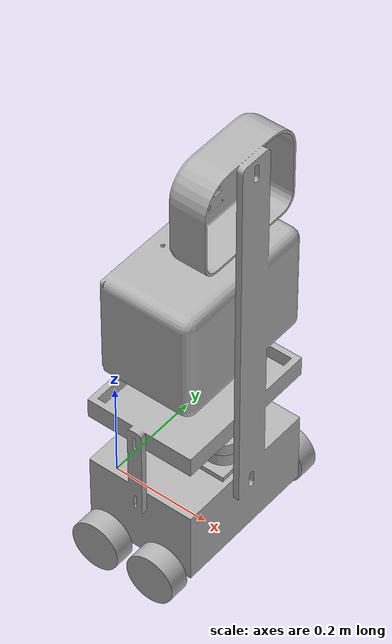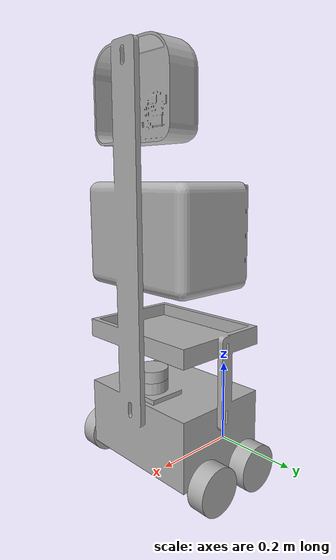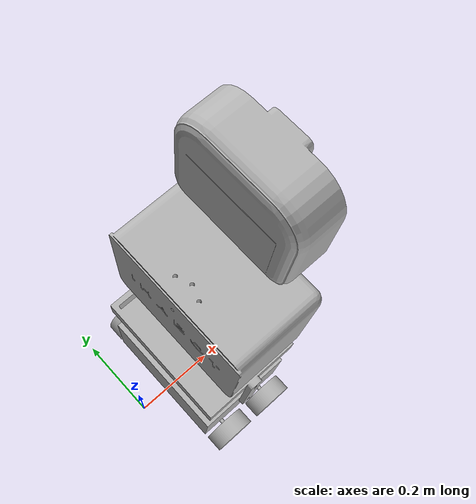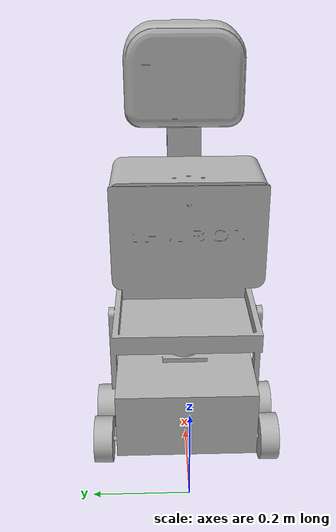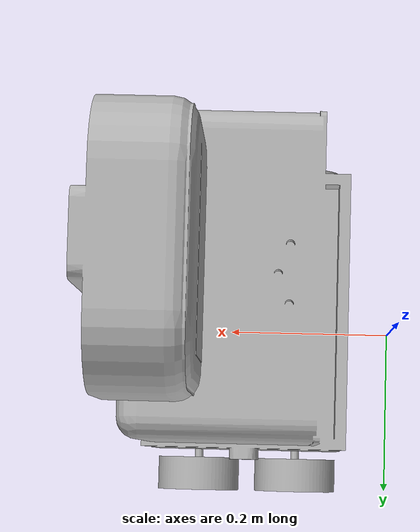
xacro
<?xml version="1.0" ?>
<robot name="base_new" xmlns:xacro="http://www.ros.org/wiki/xacro">

<xacro:include filename="$(find base_new_description)/urdf/materials.xacro" />
<xacro:include filename="$(find base_new_description)/urdf/base_new.trans" />
<xacro:include filename="$(find base_new_description)/gazebo/base_new_materials.gazebo" />
<xacro:include filename="$(find base_new_description)/gazebo/base_new_physics.gazebo" />
<xacro:include filename="$(find base_new_description)/gazebo/base_new_plugins.gazebo" />

<link name="robot_footprint"></link>

<link name="base_link">
  <inertial>
    <origin xyz="0.18818097737700523 0.001413628690118841 0.2554430927892546" rpy="0 0 0"/>
    <mass value="69.73565565400098"/>
    <inertia ixx="3.659637" iyy="3.418327" izz="0.862462" ixy="0.000429" iyz="0.009598" ixz="-0.25314"/>
  </inertial>
  <visual>
    <origin xyz="0 0 0" rpy="0 0 0"/>
    <geometry>
      <mesh filename="package://base_new_description/meshes/base_link.stl" scale="0.001 0.001 0.001"/>
    </geometry>
    <material name="silver"/>
  </visual>
  <collision>
    <origin xyz="0 0 0" rpy="0 0 0"/>
    <geometry>
      <mesh filename="package://base_new_description/meshes/base_link.stl" scale="0.001 0.001 0.001"/>
    </geometry>
  </collision>
</link>

<link name="lidar_1">
  <inertial>
    <origin xyz="-4.966178165366486e-07 1.6718262996814198e-07 0.012500447059971553" rpy="0 0 0"/>
    <mass value="0.10198395151715865"/>
    <inertia ixx="3.7e-05" iyy="3.7e-05" izz="6.2e-05" ixy="0.0" iyz="-0.0" ixz="-0.0"/>
  </inertial>
  <visual>
    <origin xyz="-0.237007 -0.001956 -0.229928" rpy="0 0 0"/>
    <geometry>
      <mesh filename="package://base_new_description/meshes/lidar_1.stl" scale="0.001 0.001 0.001"/>
    </geometry>
    <material name="silver"/>
  </visual>
  <collision>
    <origin xyz="-0.237007 -0.001956 -0.229928" rpy="0 0 0"/>
    <geometry>
      <mesh filename="package://base_new_description/meshes/lidar_1.stl" scale="0.001 0.001 0.001"/>
    </geometry>
  </collision>
</link>

<link name="left_front_wheel_1">
  <inertial>
    <origin xyz="-3.6017513348196584e-07 0.01999977551589685 4.4705997881422377e-07" rpy="0 0 0"/>
    <mass value="2.4661502330679874"/>
    <inertia ixx="0.00187" iyy="0.003083" izz="0.00187" ixy="0.0" iyz="0.0" ixz="-0.0"/>
  </inertial>
  <visual>
    <origin xyz="-0.116004 -0.161955 -0.049928" rpy="0 0 0"/>
    <geometry>
      <mesh filename="package://base_new_description/meshes/left_front_wheel_1.stl" scale="0.001 0.001 0.001"/>
    </geometry>
    <material name="silver"/>
  </visual>
  <collision>
    <origin xyz="-0.116004 -0.161955 -0.049928" rpy="0 0 0"/>
    <geometry>
      <!--mesh filename="package://base_new_description/meshes/left_front_wheel_1.stl" scale="0.001 0.001 0.001"/-->
      <cylinder length="0.02" radius="0.035"/>
    </geometry>
  </collision>
</link>

<link name="right_front_wheel_1">
  <inertial>
    <origin xyz="-3.6017513405095514e-07 -0.020000224484098772 4.470599771697059e-07" rpy="0 0 0"/>
    <mass value="2.4661502330679874"/>
    <inertia ixx="0.00187" iyy="0.003083" izz="0.00187" ixy="0.0" iyz="0.0" ixz="-0.0"/>
  </inertial>
  <visual>
    <origin xyz="-0.116004 0.158045 -0.049928" rpy="0 0 0"/>
    <geometry>
      <mesh filename="package://base_new_description/meshes/right_front_wheel_1.stl" scale="0.001 0.001 0.001"/>
    </geometry>
    <material name="silver"/>
  </visual>
  <collision>
    <origin xyz="-0.116004 0.158045 -0.049928" rpy="0 0 0"/>
    <geometry>
      <!--mesh filename="package://base_new_description/meshes/right_front_wheel_1.stl" scale="0.001 0.001 0.001"/-->
      <cylinder length="0.02" radius="0.035"/>
    </geometry>
  </collision>
</link>

<link name="right_rear_wheel_1">
  <inertial>
    <origin xyz="-3.6017513391217726e-07 -0.020000224484098467 4.4705996610910903e-07" rpy="0 0 0"/>
    <mass value="2.466150233067987"/>
    <inertia ixx="0.00187" iyy="0.003083" izz="0.00187" ixy="0.0" iyz="0.0" ixz="-0.0"/>
  </inertial>
  <visual>
    <origin xyz="-0.236004 0.158045 -0.049928" rpy="0 0 0"/>
    <geometry>
      <mesh filename="package://base_new_description/meshes/right_rear_wheel_1.stl" scale="0.001 0.001 0.001"/>
    </geometry>
    <material name="silver"/>
  </visual>
  <collision>
    <origin xyz="-0.236004 0.158045 -0.049928" rpy="0 0 0"/>
    <geometry>
      <!--mesh filename="package://base_new_description/meshes/right_rear_wheel_1.stl" scale="0.001 0.001 0.001"/-->
      <cylinder length="0.02" radius="0.035"/>
    </geometry>
  </collision>
</link>

<link name="left_rear_wheel_1">
  <inertial>
    <origin xyz="-3.6017513310726557e-07 0.019999775515897378 4.4705996778138246e-07" rpy="0 0 0"/>
    <mass value="2.466150233067988"/>
    <inertia ixx="0.00187" iyy="0.003083" izz="0.00187" ixy="0.0" iyz="0.0" ixz="-0.0"/>
  </inertial>
  <visual>
    <origin xyz="-0.236004 -0.161955 -0.049928" rpy="0 0 0"/>
    <geometry>
      <mesh filename="package://base_new_description/meshes/left_rear_wheel_1.stl" scale="0.001 0.001 0.001"/>
    </geometry>
    <material name="silver"/>
  </visual>
  <collision>
    <origin xyz="-0.236004 -0.161955 -0.049928" rpy="0 0 0"/>
    <geometry>
      <!--mesh filename="package://base_new_description/meshes/left_rear_wheel_1.stl" scale="0.001 0.001 0.001"/-->
      <cylinder length="0.02" radius="0.035"/>
    </geometry>
  </collision>
</link>

<joint name="robot_footprint_joint" type="fixed">
    <origin xyz="0 0 0" rpy="0 0 0" />
    <parent link="robot_footprint"/>
    <child link="base_link" />
</joint>

<joint name="Rev11" type="fixed">
  <origin xyz="0.237007 0.001956 0.229928" rpy="0 0 0"/>
  <parent link="base_link"/>
  <child link="lidar_1"/>
  <axis xyz="0.0 -0.0 1.0"/>
</joint>

<joint name="left_front_wheel" type="continuous">
  <origin xyz="0.116004 0.161955 0.049928" rpy="0 0 0"/>
  <parent link="base_link"/>
  <child link="left_front_wheel_1"/>
  <axis xyz="0.0 1.0 0.0"/>
</joint>

<joint name="right_front_wheel" type="continuous">
  <origin xyz="0.116004 -0.158045 0.049928" rpy="0 0 0"/>
  <parent link="base_link"/>
  <child link="right_front_wheel_1"/>
  <axis xyz="0.0 1.0 0.0"/>
</joint>

<joint name="right_rear_wheel" type="continuous">
  <origin xyz="0.236004 -0.158045 0.049928" rpy="0 0 0"/>
  <parent link="base_link"/>
  <child link="right_rear_wheel_1"/>
  <axis xyz="0.0 1.0 0.0"/>
</joint>

<joint name="left_rear_wheel" type="continuous">
  <origin xyz="0.236004 0.161955 0.049928" rpy="0 0 0"/>
  <parent link="base_link"/>
  <child link="left_rear_wheel_1"/>
  <axis xyz="0.0 1.0 0.0"/>
</joint>

</robot>

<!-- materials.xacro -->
<robot name="base_new" xmlns:xacro="http://www.ros.org/wiki/xacro" >

<material name="silver">
  <color rgba="0.700 0.700 0.700 1.000"/>
</material>

</robot>

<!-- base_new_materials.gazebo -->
<robot name="base_new" xmlns:xacro="http://www.ros.org/wiki/xacro" >

<xacro:property name="body_color" value="Gazebo/Gray" />
<xacro:property name="blue_color" value="Gazebo/Black" />
<xacro:property name="indigo_color" value="Gazebo/Indigo" />

<gazebo reference="base_link">
  <material>${body_color}</material>
</gazebo>

<gazebo reference="lidar_1">
  <material>${blue_color}</material>

</gazebo>

<gazebo reference="left_front_wheel_1">
  <material>${indigo_color}</material>

</gazebo>

<gazebo reference="right_front_wheel_1">
  <material>${indigo_color}</material>

</gazebo>

<gazebo reference="right_rear_wheel_1">
  <material>${indigo_color}</material>

</gazebo>

<gazebo reference="left_rear_wheel_1">
  <material>${indigo_color}</material>

</gazebo>

</robot>
